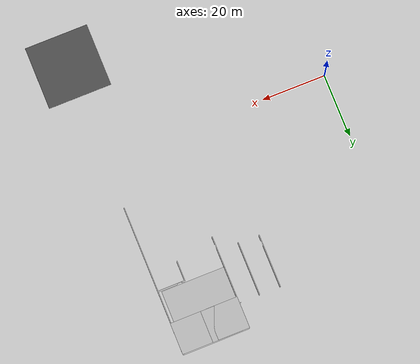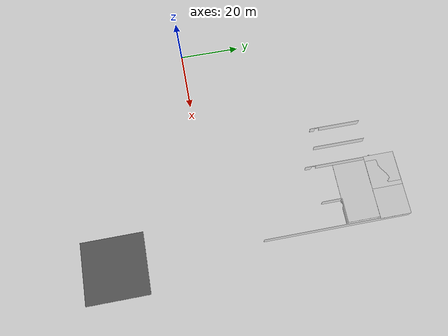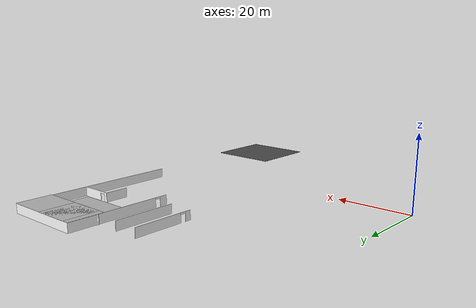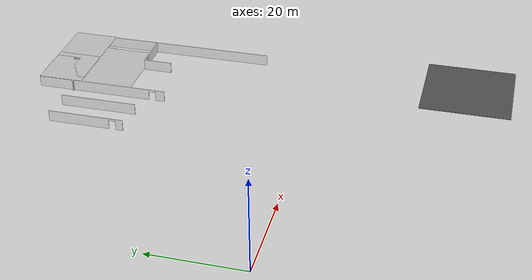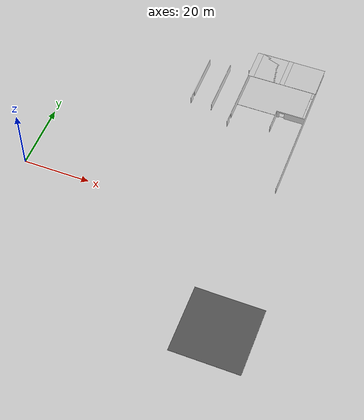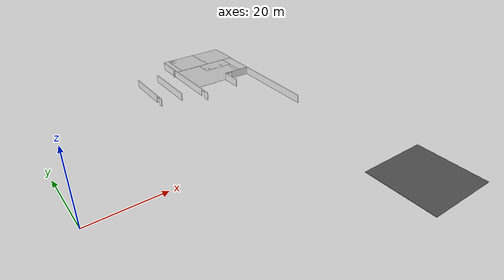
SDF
<sdf version="1.6">
 <world name="default">
  <model name="mainoffice">
   <pose>42.7555 15.4488 0 0 -0 0</pose>
   <link name="Wall_117">
    <pose>7.35091 32.65 0 0 -0 1.5708</pose>
    <visual name="Wall_117_Visual_0">
     <pose>-13.7043 0 1.25 0 -0 0</pose>
     <geometry><box><size>2.09149 0.15 2.5</size></box></geometry>
     <material>
      <script>
       <uri>model://office_env/materials/scripts</uri>
       <uri>model://office_env/materials/textures</uri>
       <name>wall</name>
      </script>
      <ambient>1 1 1 1</ambient>
     </material>
    </visual>
    <collision name="Wall_117_Collision_0">
     <geometry><box><size>2.09149 0.15 2.5</size></box></geometry>
     <pose>-13.7043 0 1.25 0 -0 0</pose>
    </collision>
    <visual name="Wall_117_Visual_1">
     <pose>1.79575 0 1.25 0 -0 0</pose>
     <geometry><box><size>25.9085 0.15 2.5</size></box></geometry>
     <material>
      <script>
       <uri>model://office_env/materials/scripts</uri>
       <uri>model://office_env/materials/textures</uri>
       <name>wall</name>
      </script>
      <ambient>1 1 1 1</ambient>
     </material>
    </visual>
    <collision name="Wall_117_Collision_1">
     <geometry><box><size>25.9085 0.15 2.5</size></box></geometry>
     <pose>1.79575 0 1.25 0 -0 0</pose>
    </collision>
    <visual name="Wall_117_Visual_2">
     <pose>-11.9085 0 2.25 0 -0 0</pose>
     <geometry><box><size>1.5 0.15 0.5</size></box></geometry>
     <material>
      <script>
       <uri>model://office_env/materials/scripts</uri>
       <uri>model://office_env/materials/textures</uri>
       <name>wall</name>
      </script>
      <ambient>1 1 1 1</ambient>
     </material>
    </visual>
    <collision name="Wall_117_Collision_2">
     <geometry><box><size>1.5 0.15 0.5</size></box></geometry>
     <pose>-11.9085 0 2.25 0 -0 0</pose>
    </collision>
   </link>
   <link name="Wall_118">
    <collision name="Wall_118_Collision">
     <geometry><box><size>21.25 0.15 2.5</size></box></geometry>
     <pose>0 0 1.25 0 -0 0</pose>
    </collision>
    <visual name="Wall_118_Visual">
     <pose>0 0 1.25 0 -0 0</pose>
     <geometry><box><size>21.25 0.15 2.5</size></box></geometry>
     <material>
      <script>
       <uri>model://office_env/materials/scripts</uri>
       <uri>model://office_env/materials/textures</uri>
       <name>wall</name>
      </script>
      <ambient>1 1 1 1</ambient>
     </material>
    </visual>
    <pose>17.9009 47.325 0 0 -0 0</pose>
   </link>
   <link name="Wall_120">
    <collision name="Wall_120_Collision">
     <geometry><box><size>0.5 0.15 2.5</size></box></geometry>
     <pose>0 0 1.25 0 -0 0</pose>
    </collision>
    <visual name="Wall_120_Visual">
     <pose>0 0 1.25 0 -0 0</pose>
     <geometry><box><size>0.5 0.15 2.5</size></box></geometry>
     <material>
      <script>
       <uri>model://office_env/materials/scripts</uri>
       <uri>model://office_env/materials/textures</uri>
       <name>wall</name>
      </script>
      <ambient>1 1 1 1</ambient>
     </material>
    </visual>
    <pose>7.07591 39.325 0 0 -0 0</pose>
   </link>
   <link name="Wall_122">
    <collision name="Wall_122_Collision">
     <geometry><box><size>47.5 0.15 2.5</size></box></geometry>
     <pose>0 0 1.25 0 -0 0</pose>
    </collision>
    <visual name="Wall_122_Visual">
     <pose>0 0 1.25 0 -0 0</pose>
     <geometry><box><size>47.5 0.15 2.5</size></box></geometry>
     <material>
      <script>
       <uri>model://office_env/materials/scripts</uri>
       <uri>model://office_env/materials/textures</uri>
       <name>wall</name>
      </script>
      <ambient>1 1 1 1</ambient>
     </material>
    </visual>
    <pose>28.4509 23.65 0 0 0 -1.5708</pose>
   </link>
   <link name="Wall_143">
    <pose>-5.82803 30.9736 0 0 -0 1.5708</pose>
    <visual name="Wall_143_Visual_0">
     <pose>-7.57974 0 1.25 0 -0 0</pose>
     <geometry><box><size>1.59051 0.15 2.5</size></box></geometry>
     <material>
      <script>
       <uri>model://office_env/materials/scripts</uri>
       <uri>model://office_env/materials/textures</uri>
       <name>wall</name>
      </script>
      <ambient>1 1 1 1</ambient>
     </material>
    </visual>
    <collision name="Wall_143_Collision_0">
     <geometry><box><size>1.59051 0.15 2.5</size></box></geometry>
     <pose>-7.57974 0 1.25 0 -0 0</pose>
    </collision>
    <visual name="Wall_143_Visual_1">
     <pose>1.54526 0 1.25 0 -0 0</pose>
     <geometry><box><size>13.6595 0.15 2.5</size></box></geometry>
     <material>
      <script>
       <uri>model://office_env/materials/scripts</uri>
       <uri>model://office_env/materials/textures</uri>
       <name>wall</name>
      </script>
      <ambient>1 1 1 1</ambient>
     </material>
    </visual>
    <collision name="Wall_143_Collision_1">
     <geometry><box><size>13.6595 0.15 2.5</size></box></geometry>
     <pose>1.54526 0 1.25 0 -0 0</pose>
    </collision>
    <visual name="Wall_143_Visual_2">
     <pose>-6.03449 0 2.25 0 -0 0</pose>
     <geometry><box><size>1.5 0.15 0.5</size></box></geometry>
     <material>
      <script>
       <uri>model://office_env/materials/scripts</uri>
       <uri>model://office_env/materials/textures</uri>
       <name>wall</name>
      </script>
      <ambient>1 1 1 1</ambient>
     </material>
    </visual>
    <collision name="Wall_143_Collision_2">
     <geometry><box><size>1.5 0.15 0.5</size></box></geometry>
     <pose>-6.03449 0 2.25 0 -0 0</pose>
    </collision>
   </link>
   <link name="Wall_148">
    <collision name="Wall_148_Collision">
     <geometry><box><size>6.5 0.15 2.5</size></box></geometry>
     <pose>0 0 1.25 0 -0 0</pose>
    </collision>
    <visual name="Wall_148_Visual">
     <pose>0 0 1.25 0 -0 0</pose>
     <geometry><box><size>6.5 0.15 2.5</size></box></geometry>
     <material>
      <script>
       <uri>model://office_env/materials/scripts</uri>
       <uri>model://office_env/materials/textures</uri>
       <name>wall</name>
      </script>
      <ambient>1 1 1 1</ambient>
     </material>
    </visual>
    <pose>19.8285 23.84 0 0 -0 1.5708</pose>
   </link>
   <link name="Wall_149">
    <pose>24.1285 27.015 0 0 -0 0</pose>
    <visual name="Wall_149_Visual_0">
     <pose>-3.8969 0 1.25 0 -0 0</pose>
     <geometry><box><size>0.956204 0.15 2.5</size></box></geometry>
     <material>
      <script>
       <uri>model://office_env/materials/scripts</uri>
       <uri>model://office_env/materials/textures</uri>
       <name>wall</name>
      </script>
      <ambient>1 1 1 1</ambient>
     </material>
    </visual>
    <collision name="Wall_149_Collision_0">
     <geometry><box><size>0.956204 0.15 2.5</size></box></geometry>
     <pose>-3.8969 0 1.25 0 -0 0</pose>
    </collision>
    <visual name="Wall_149_Visual_1">
     <pose>1.2281 0 1.25 0 -0 0</pose>
     <geometry><box><size>6.2938 0.15 2.5</size></box></geometry>
     <material>
      <script>
       <uri>model://office_env/materials/scripts</uri>
       <uri>model://office_env/materials/textures</uri>
       <name>wall</name>
      </script>
      <ambient>1 1 1 1</ambient>
     </material>
    </visual>
    <collision name="Wall_149_Collision_1">
     <geometry><box><size>6.2938 0.15 2.5</size></box></geometry>
     <pose>1.2281 0 1.25 0 -0 0</pose>
    </collision>
    <visual name="Wall_149_Visual_2">
     <pose>-2.6688 0 2.25 0 -0 0</pose>
     <geometry><box><size>1.5 0.15 0.5</size></box></geometry>
     <material>
      <script>
       <uri>model://office_env/materials/scripts</uri>
       <uri>model://office_env/materials/textures</uri>
       <name>wall</name>
      </script>
      <ambient>1 1 1 1</ambient>
     </material>
    </visual>
    <collision name="Wall_149_Collision_2">
     <geometry><box><size>1.5 0.15 0.5</size></box></geometry>
     <pose>-2.6688 0 2.25 0 -0 0</pose>
    </collision>
   </link>
   <link name="Wall_151">
    <collision name="Wall_151_Collision">
     <geometry><box><size>17 0.15 2.5</size></box></geometry>
     <pose>0 0 1.25 0 -0 0</pose>
    </collision>
    <visual name="Wall_151_Visual">
     <pose>0 0 1.25 0 -0 0</pose>
     <geometry><box><size>17 0.15 2.5</size></box></geometry>
     <material>
      <script>
       <uri>model://office_env/materials/scripts</uri>
       <uri>model://office_env/materials/textures</uri>
       <name>wall</name>
      </script>
      <ambient>1 1 1 1</ambient>
     </material>
    </visual>
    <pose>0.803107 30.8154 0 0 -0 1.5708</pose>
   </link>
   <static>1</static>
  </model>
  <model name="asphalt_plane">
   <static>1</static>
   <link name="link">
    <collision name="collision"><geometry><box><size>20 20 0.1</size></box></geometry></collision>
    <visual name="visual">
     <cast_shadows>0</cast_shadows>
     <geometry><box><size>20 20 0.1</size></box></geometry>
     <material>
      <script>
       <uri>model://asphalt_plane/materials/scripts</uri>
       <uri>model://asphalt_plane/materials/textures</uri>
       <name>vrc/asphalt</name>
      </script>
     </material>
    </visual>
   </link>
   <pose>70.7475 -31.5972 0 0 -0 0</pose>
  </model>
  <model name="Floor_34">
   <link name="main">
    <pose>0 0 0.01 0 -0 0</pose>
    <collision name="main_Collision"><geometry><box><size>20 20 0.05</size></box></geometry></collision>
    <visual name="main_Visual">
     <geometry><box><size>20 20 0.05</size></box></geometry>
     <material>
      <script>
       <uri>model://Floor_medium/materials/scripts</uri>
       <uri>model://Floor_medium/materials/textures</uri>
       <name>floor</name>
      </script>
     </material>
    </visual>
   </link>
   <static>1</static>
   <pose>60.1672 52.7557 0 0 -0 0</pose>
  </model>
  <model name="Floor_35">
   <link name="main">
    <pose>0 0 0.01 0 -0 0</pose>
    <collision name="main_Collision"><geometry><box><size>10 10 0.05</size></box></geometry></collision>
    <visual name="main_Visual">
     <geometry><box><size>10 10 0.05</size></box></geometry>
     <material>
      <script>
       <uri>model://Floor_small/materials/scripts</uri>
       <uri>model://Floor_small/materials/textures</uri>
       <name>floor</name>
      </script>
     </material>
    </visual>
   </link>
   <static>1</static>
   <pose>66.2217 57.7646 0 0 -0 0</pose>
  </model>
  <model name="Floor_3_clone_22">
   <link name="main">
    <pose>0 0 0.01 0 -0 0</pose>
    <collision name="main_Collision"><geometry><box><size>10 10 0.05</size></box></geometry></collision>
    <visual name="main_Visual">
     <geometry><box><size>10 10 0.05</size></box></geometry>
     <material>
      <script>
       <uri>model://Floor_small/materials/scripts</uri>
       <uri>model://Floor_small/materials/textures</uri>
       <name>floor</name>
      </script>
     </material>
    </visual>
   </link>
   <static>1</static>
   <pose>66.4481 57.8484 2.5 0 -0 0</pose>
  </model>
  <model name="Floor_3_clone_23">
   <link name="main">
    <pose>0 0 0.01 0 -0 0</pose>
    <collision name="main_Collision"><geometry><box><size>10 10 0.05</size></box></geometry></collision>
    <visual name="main_Visual">
     <geometry><box><size>10 10 0.05</size></box></geometry>
     <material>
      <script>
       <uri>model://Floor_small/materials/scripts</uri>
       <uri>model://Floor_small/materials/textures</uri>
       <name>floor</name>
      </script>
     </material>
    </visual>
   </link>
   <static>1</static>
   <pose>56.7822 57.8754 2.5 0 -0 0</pose>
  </model>
  <model name="Floor_3_clone_24">
   <link name="main">
    <pose>0 0 0.01 0 -0 0</pose>
    <collision name="main_Collision"><geometry><box><size>10 10 0.05</size></box></geometry></collision>
    <visual name="main_Visual">
     <geometry><box><size>10 10 0.05</size></box></geometry>
     <material>
      <script>
       <uri>model://Floor_small/materials/scripts</uri>
       <uri>model://Floor_small/materials/textures</uri>
       <name>floor</name>
      </script>
     </material>
    </visual>
   </link>
   <static>1</static>
   <pose>54.9982 57.8228 2.5 0 -0 0</pose>
  </model>
 </world>
</sdf>
